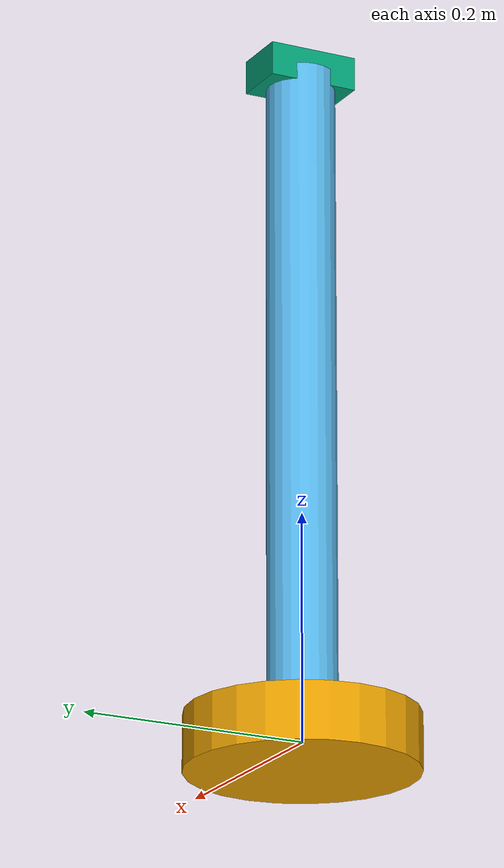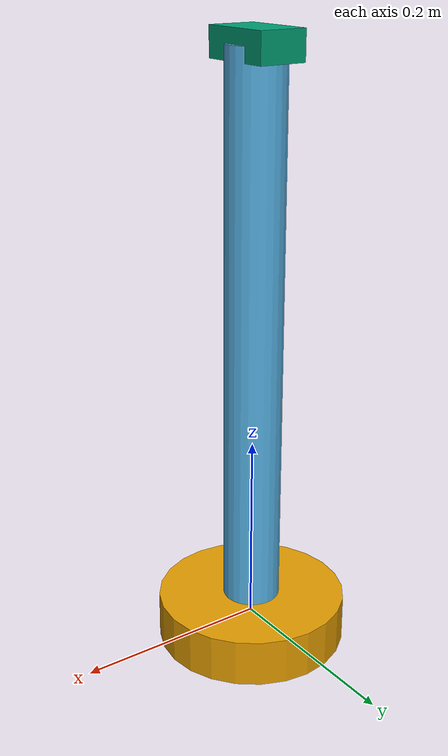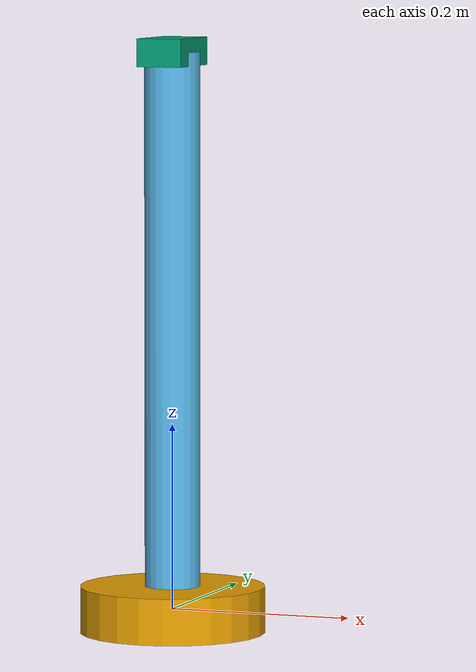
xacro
<?xml version="1.0"?>
<robot name="mastil_sensores" xmlns:xacro="http://www.ros.org/wiki/xacro">

  <xacro:property name="mast_height" value="0.6"/>

  <link name="base_link">
    <visual><geometry><cylinder radius="0.1" length="0.05"/></geometry></visual>
    <collision><geometry><cylinder radius="0.1" length="0.05"/></geometry></collision>
    <inertial>
      <mass value="2"/>
      <inertia ixx="0.01" ixy="0" ixz="0" iyy="0.01" iyz="0" izz="0.01"/>
    </inertial>
  </link>

  <link name="mast_link">
    <visual><geometry><cylinder radius="0.03" length="${mast_height}"/></geometry></visual>
    <collision><geometry><cylinder radius="0.03" length="${mast_height}"/></geometry></collision>
    <inertial>
      <mass value="0.5"/>
      <inertia ixx="0.002" ixy="0" ixz="0" iyy="0.002" iyz="0" izz="0.001"/>
    </inertial>
  </link>

  <joint name="mast_joint" type="fixed">
    <parent link="base_link"/>
    <child link="mast_link"/>
    <origin xyz="0 0 ${mast_height / 2}" rpy="0 0 0"/>
  </joint>

  <link name="camera_link">
    <visual><geometry><box size="0.05 0.08 0.03"/></geometry></visual>
    <collision><geometry><box size="0.05 0.08 0.03"/></geometry></collision>
    <inertial>
      <mass value="0.1"/>
      <inertia ixx="0.0002" ixy="0" ixz="0" iyy="0.0002" iyz="0" izz="0.0002"/>
    </inertial>
  </link>

  <joint name="camera_joint" type="fixed">
    <parent link="mast_link"/>
    <child link="camera_link"/>
    <origin xyz="0 0 ${mast_height / 2}" rpy="0 0 0"/>
  </joint>

  <gazebo reference="camera_link">
    <sensor type="camera" name="camera_sensor">
      <update_rate>15</update_rate>
      <camera>
        <horizontal_fov>1.2</horizontal_fov>
        <image><width>640</width><height>480</height></image>
        <clip><near>0.05</near><far>20.0</far></clip>
      </camera>
    </sensor>
  </gazebo>

</robot>
